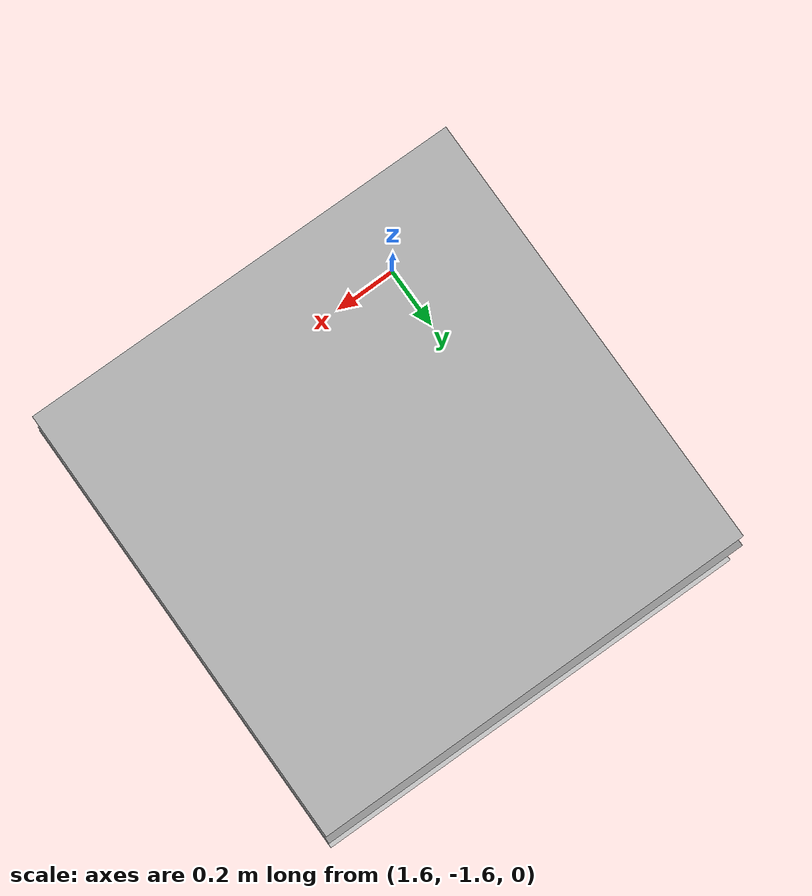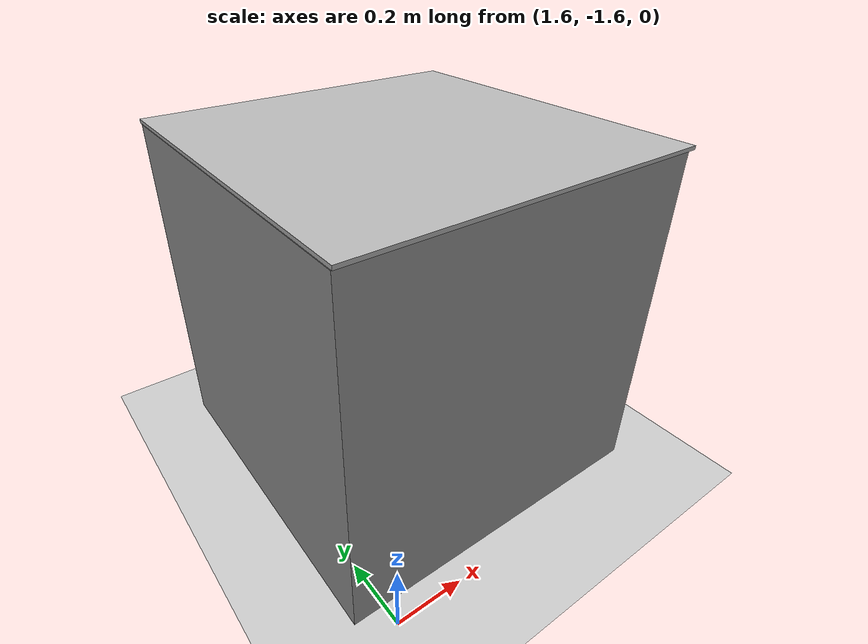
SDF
<sdf version="1.6">
 <world name="default">
  <light name="sun" type="directional">
   <pose>0 0 10 0 -0 0</pose>
   <diffuse>0.8 0.8 0.8 1</diffuse>
   <specular>0.2 0.2 0.2 1</specular>
   <attenuation>
    <range>1000</range>
    <constant>0.9</constant>
    <linear>0.01</linear>
    <quadratic>0.001</quadratic>
   </attenuation>
   <direction>-0.5 0.1 -0.9</direction>
  </light>
  <model name="ground_plane">
   <static>1</static>
   <link name="link">
    <collision name="collision">
     <geometry><plane><normal>0 0 1</normal><size>100 100</size></plane></geometry>
     <surface>
      <contact><collide_bitmask>65535</collide_bitmask></contact>
      <friction><ode><mu>100</mu><mu2>50</mu2></ode></friction>
     </surface>
    </collision>
    <visual name="visual">
     <cast_shadows>0</cast_shadows>
     <geometry><plane><normal>0 0 1</normal><size>100 100</size></plane></geometry>
     <material>
      <script><uri>file://media/materials/scripts/gazebo.material</uri><name>Gazebo/Grey</name></script>
     </material>
    </visual>
   </link>
  </model>
  <physics name="default_physics" default="0" type="ode">
   <ode>
    <solver>
     <type>quick</type>
     <iters>10</iters>
     <sor>1.3</sor>
     <use_dynamic_moi_rescaling>0</use_dynamic_moi_rescaling>
    </solver>
    <constraints>
     <cfm>0</cfm>
     <erp>0.2</erp>
     <contact_max_correcting_vel>100</contact_max_correcting_vel>
     <contact_surface_layer>0.001</contact_surface_layer>
    </constraints>
   </ode>
   <max_step_size>0.004</max_step_size>
   <real_time_factor>1</real_time_factor>
   <real_time_update_rate>250</real_time_update_rate>
  </physics>
  <gravity>0 0 -9.8066</gravity>
  <magnetic_field>6e-06 2.3e-05 -4.2e-05</magnetic_field>
  <atmosphere type="adiabatic"/>
  <scene><ambient>0.4 0.4 0.4 1</ambient><background>0.7 0.7 0.7 1</background><shadows>1</shadows></scene>
  <spherical_coordinates>
   <surface_model>EARTH_WGS84</surface_model>
   <latitude_deg>0</latitude_deg>
   <longitude_deg>0</longitude_deg>
   <elevation>0</elevation>
   <heading_deg>0</heading_deg>
  </spherical_coordinates>
  <model name="Apriltag36_11_00000">
   <link name="main">
    <visual name="main_Visual">
     <geometry><box><size>1 1 0.01</size></box></geometry>
     <material>
      <script>
       <uri>model://Apriltag36_11_00000/materials/scripts</uri>
       <uri>model://Apriltag36_11_00000/materials/textures</uri>
       <name>Apriltag36_11_00000</name>
      </script>
     </material>
    </visual>
   </link>
   <static>1</static>
   <pose>2.0055 -1.05659 1.01465 0 -0 0</pose>
  </model>
  <model name="unit_box">
   <pose>2.01249 -1.0391 0.5 -1.7e-05 -3e-06 1e-06</pose>
   <link name="link">
    <inertial>
     <mass>1</mass>
     <inertia>
      <ixx>0.166667</ixx>
      <ixy>0</ixy>
      <ixz>0</ixz>
      <iyy>0.166667</iyy>
      <iyz>0</iyz>
      <izz>0.166667</izz>
     </inertia>
    </inertial>
    <collision name="collision"><geometry><box><size>1 1 1</size></box></geometry></collision>
    <visual name="visual">
     <geometry><box><size>1 1 1</size></box></geometry>
     <material>
      <script><name>Gazebo/Grey</name><uri>file://media/materials/scripts/gazebo.material</uri></script>
     </material>
    </visual>
   </link>
  </model>
 </world>
</sdf>
